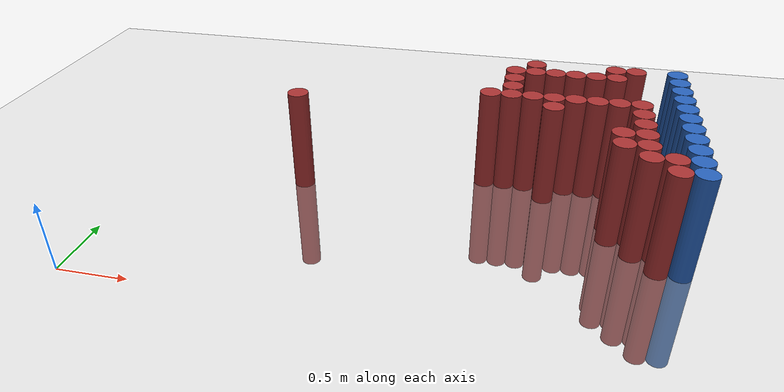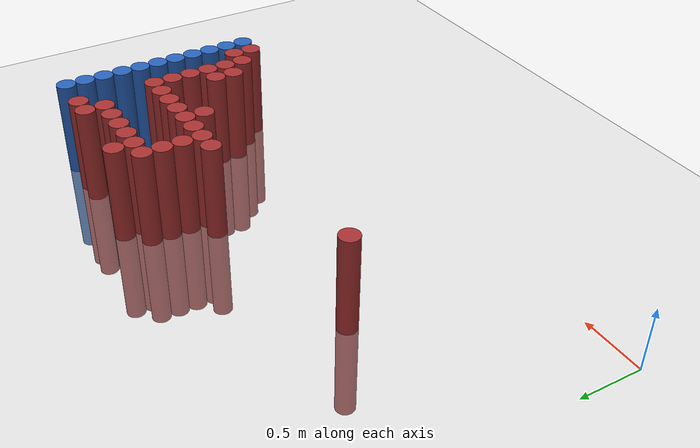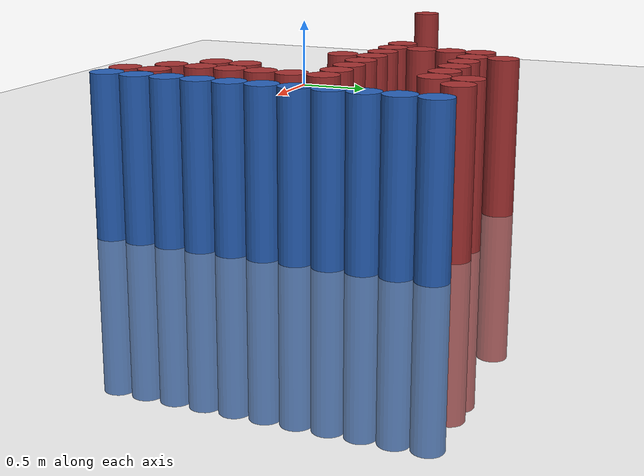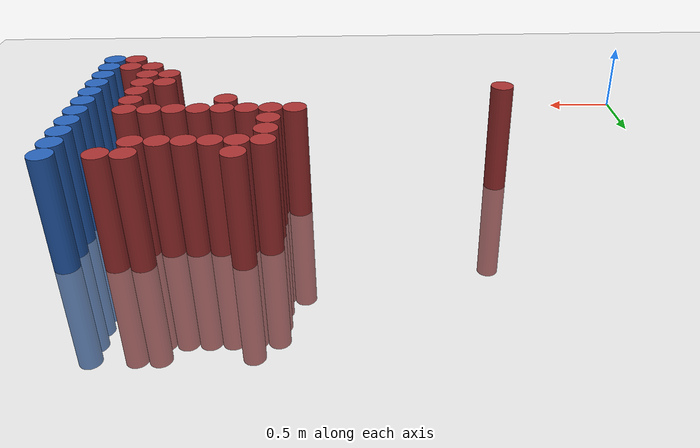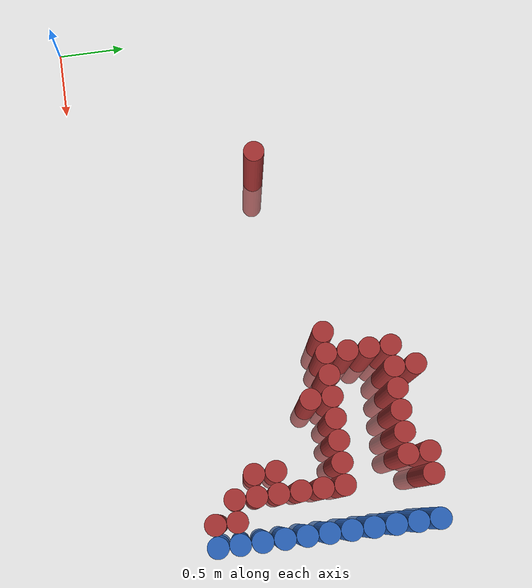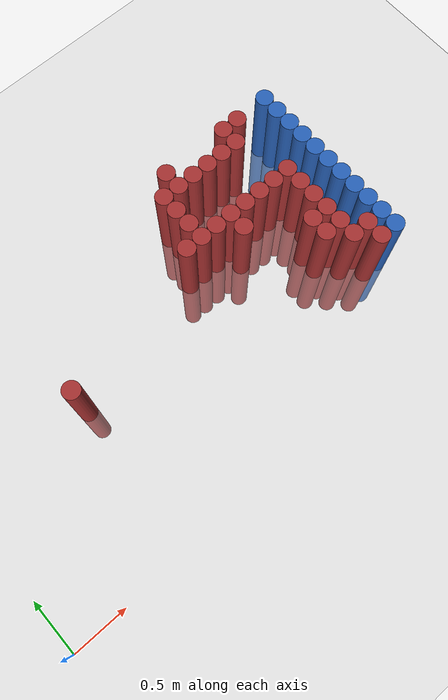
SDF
<sdf version="1.6">
 <world name="default">
  <model name="ground_plane">
   <static>1</static>
   <link name="link">
    <collision name="collision">
     <geometry><plane><normal>0 0 1</normal><size>100 100</size></plane></geometry>
     <surface><friction><ode><mu>100</mu><mu2>50</mu2></ode></friction></surface>
    </collision>
    <visual name="visual">
     <cast_shadows>0</cast_shadows>
     <geometry><plane><normal>0 0 1</normal><size>100 100</size></plane></geometry>
     <material>
      <script><uri>file://media/materials/scripts/gazebo.material</uri><name>Gazebo/Grey</name></script>
     </material>
    </visual>
   </link>
  </model>
  <model name="unit_cylinder_126">
   <static>1</static>
   <pose>3.925000 0.925000 0.000000 0.000000 0.000000 0.000000</pose>
   <link name="link">
    <inertial>
     <mass>1</mass>
     <inertia><ixx>0.145833</ixx><ixy>0</ixy><ixz>0</ixz><iyy>0.145833</iyy><iyz>0</iyz><izz>0.125</izz></inertia>
    </inertial>
    <collision name="collision">
     <geometry><cylinder><radius>0.075000</radius><length>1.5</length></cylinder></geometry>
    </collision>
    <visual name="visual">
     <geometry><cylinder><radius>0.075000</radius><length>1.5</length></cylinder></geometry>
     <material>
      <ambient>0.152000 0.379000 0.720000 1</ambient>
      <diffuse>0.152000 0.379000 0.720000 1</diffuse>
     </material>
     <material>
      <script><name>Gazebo/Grey</name><uri>file://media/materials/scripts/gazebo.material</uri></script>
     </material>
    </visual>
   </link>
  </model>
  <model name="unit_cylinder_128">
   <static>1</static>
   <pose>3.925000 1.075000 0.000000 0.000000 0.000000 0.000000</pose>
   <link name="link">
    <inertial>
     <mass>1</mass>
     <inertia><ixx>0.145833</ixx><ixy>0</ixy><ixz>0</ixz><iyy>0.145833</iyy><iyz>0</iyz><izz>0.125</izz></inertia>
    </inertial>
    <collision name="collision">
     <geometry><cylinder><radius>0.075000</radius><length>1.5</length></cylinder></geometry>
    </collision>
    <visual name="visual">
     <geometry><cylinder><radius>0.075000</radius><length>1.5</length></cylinder></geometry>
     <material>
      <ambient>0.152000 0.379000 0.720000 1</ambient>
      <diffuse>0.152000 0.379000 0.720000 1</diffuse>
     </material>
     <material>
      <script><name>Gazebo/Grey</name><uri>file://media/materials/scripts/gazebo.material</uri></script>
     </material>
    </visual>
   </link>
  </model>
  <model name="unit_cylinder_130">
   <static>1</static>
   <pose>3.925000 1.225000 0.000000 0.000000 0.000000 0.000000</pose>
   <link name="link">
    <inertial>
     <mass>1</mass>
     <inertia><ixx>0.145833</ixx><ixy>0</ixy><ixz>0</ixz><iyy>0.145833</iyy><iyz>0</iyz><izz>0.125</izz></inertia>
    </inertial>
    <collision name="collision">
     <geometry><cylinder><radius>0.075000</radius><length>1.5</length></cylinder></geometry>
    </collision>
    <visual name="visual">
     <geometry><cylinder><radius>0.075000</radius><length>1.5</length></cylinder></geometry>
     <material>
      <ambient>0.152000 0.379000 0.720000 1</ambient>
      <diffuse>0.152000 0.379000 0.720000 1</diffuse>
     </material>
     <material>
      <script><name>Gazebo/Grey</name><uri>file://media/materials/scripts/gazebo.material</uri></script>
     </material>
    </visual>
   </link>
  </model>
  <model name="unit_cylinder_132">
   <static>1</static>
   <pose>3.925000 1.375000 0.000000 0.000000 0.000000 0.000000</pose>
   <link name="link">
    <inertial>
     <mass>1</mass>
     <inertia><ixx>0.145833</ixx><ixy>0</ixy><ixz>0</ixz><iyy>0.145833</iyy><iyz>0</iyz><izz>0.125</izz></inertia>
    </inertial>
    <collision name="collision">
     <geometry><cylinder><radius>0.075000</radius><length>1.5</length></cylinder></geometry>
    </collision>
    <visual name="visual">
     <geometry><cylinder><radius>0.075000</radius><length>1.5</length></cylinder></geometry>
     <material>
      <ambient>0.152000 0.379000 0.720000 1</ambient>
      <diffuse>0.152000 0.379000 0.720000 1</diffuse>
     </material>
     <material>
      <script><name>Gazebo/Grey</name><uri>file://media/materials/scripts/gazebo.material</uri></script>
     </material>
    </visual>
   </link>
  </model>
  <model name="unit_cylinder_134">
   <static>1</static>
   <pose>3.925000 1.525000 0.000000 0.000000 0.000000 0.000000</pose>
   <link name="link">
    <inertial>
     <mass>1</mass>
     <inertia><ixx>0.145833</ixx><ixy>0</ixy><ixz>0</ixz><iyy>0.145833</iyy><iyz>0</iyz><izz>0.125</izz></inertia>
    </inertial>
    <collision name="collision">
     <geometry><cylinder><radius>0.075000</radius><length>1.5</length></cylinder></geometry>
    </collision>
    <visual name="visual">
     <geometry><cylinder><radius>0.075000</radius><length>1.5</length></cylinder></geometry>
     <material>
      <ambient>0.152000 0.379000 0.720000 1</ambient>
      <diffuse>0.152000 0.379000 0.720000 1</diffuse>
     </material>
     <material>
      <script><name>Gazebo/Grey</name><uri>file://media/materials/scripts/gazebo.material</uri></script>
     </material>
    </visual>
   </link>
  </model>
  <model name="unit_cylinder_136">
   <static>1</static>
   <pose>3.925000 1.675000 0.000000 0.000000 0.000000 0.000000</pose>
   <link name="link">
    <inertial>
     <mass>1</mass>
     <inertia><ixx>0.145833</ixx><ixy>0</ixy><ixz>0</ixz><iyy>0.145833</iyy><iyz>0</iyz><izz>0.125</izz></inertia>
    </inertial>
    <collision name="collision">
     <geometry><cylinder><radius>0.075000</radius><length>1.5</length></cylinder></geometry>
    </collision>
    <visual name="visual">
     <geometry><cylinder><radius>0.075000</radius><length>1.5</length></cylinder></geometry>
     <material>
      <ambient>0.152000 0.379000 0.720000 1</ambient>
      <diffuse>0.152000 0.379000 0.720000 1</diffuse>
     </material>
     <material>
      <script><name>Gazebo/Grey</name><uri>file://media/materials/scripts/gazebo.material</uri></script>
     </material>
    </visual>
   </link>
  </model>
  <model name="unit_cylinder_138">
   <static>1</static>
   <pose>3.925000 1.825000 0.000000 0.000000 0.000000 0.000000</pose>
   <link name="link">
    <inertial>
     <mass>1</mass>
     <inertia><ixx>0.145833</ixx><ixy>0</ixy><ixz>0</ixz><iyy>0.145833</iyy><iyz>0</iyz><izz>0.125</izz></inertia>
    </inertial>
    <collision name="collision">
     <geometry><cylinder><radius>0.075000</radius><length>1.5</length></cylinder></geometry>
    </collision>
    <visual name="visual">
     <geometry><cylinder><radius>0.075000</radius><length>1.5</length></cylinder></geometry>
     <material>
      <ambient>0.152000 0.379000 0.720000 1</ambient>
      <diffuse>0.152000 0.379000 0.720000 1</diffuse>
     </material>
     <material>
      <script><name>Gazebo/Grey</name><uri>file://media/materials/scripts/gazebo.material</uri></script>
     </material>
    </visual>
   </link>
  </model>
  <model name="unit_cylinder_140">
   <static>1</static>
   <pose>3.925000 1.975000 0.000000 0.000000 0.000000 0.000000</pose>
   <link name="link">
    <inertial>
     <mass>1</mass>
     <inertia><ixx>0.145833</ixx><ixy>0</ixy><ixz>0</ixz><iyy>0.145833</iyy><iyz>0</iyz><izz>0.125</izz></inertia>
    </inertial>
    <collision name="collision">
     <geometry><cylinder><radius>0.075000</radius><length>1.5</length></cylinder></geometry>
    </collision>
    <visual name="visual">
     <geometry><cylinder><radius>0.075000</radius><length>1.5</length></cylinder></geometry>
     <material>
      <ambient>0.152000 0.379000 0.720000 1</ambient>
      <diffuse>0.152000 0.379000 0.720000 1</diffuse>
     </material>
     <material>
      <script><name>Gazebo/Grey</name><uri>file://media/materials/scripts/gazebo.material</uri></script>
     </material>
    </visual>
   </link>
  </model>
  <model name="unit_cylinder_142">
   <static>1</static>
   <pose>3.925000 2.125000 0.000000 0.000000 0.000000 0.000000</pose>
   <link name="link">
    <inertial>
     <mass>1</mass>
     <inertia><ixx>0.145833</ixx><ixy>0</ixy><ixz>0</ixz><iyy>0.145833</iyy><iyz>0</iyz><izz>0.125</izz></inertia>
    </inertial>
    <collision name="collision">
     <geometry><cylinder><radius>0.075000</radius><length>1.5</length></cylinder></geometry>
    </collision>
    <visual name="visual">
     <geometry><cylinder><radius>0.075000</radius><length>1.5</length></cylinder></geometry>
     <material>
      <ambient>0.152000 0.379000 0.720000 1</ambient>
      <diffuse>0.152000 0.379000 0.720000 1</diffuse>
     </material>
     <material>
      <script><name>Gazebo/Grey</name><uri>file://media/materials/scripts/gazebo.material</uri></script>
     </material>
    </visual>
   </link>
  </model>
  <model name="unit_cylinder_144">
   <static>1</static>
   <pose>3.925000 2.275000 0.000000 0.000000 0.000000 0.000000</pose>
   <link name="link">
    <inertial>
     <mass>1</mass>
     <inertia><ixx>0.145833</ixx><ixy>0</ixy><ixz>0</ixz><iyy>0.145833</iyy><iyz>0</iyz><izz>0.125</izz></inertia>
    </inertial>
    <collision name="collision">
     <geometry><cylinder><radius>0.075000</radius><length>1.5</length></cylinder></geometry>
    </collision>
    <visual name="visual">
     <geometry><cylinder><radius>0.075000</radius><length>1.5</length></cylinder></geometry>
     <material>
      <ambient>0.152000 0.379000 0.720000 1</ambient>
      <diffuse>0.152000 0.379000 0.720000 1</diffuse>
     </material>
     <material>
      <script><name>Gazebo/Grey</name><uri>file://media/materials/scripts/gazebo.material</uri></script>
     </material>
    </visual>
   </link>
  </model>
  <model name="unit_cylinder_404">
   <static>1</static>
   <pose>1.225000 1.375000 0.000000 0.000000 0.000000 0.000000</pose>
   <link name="link">
    <inertial>
     <mass>1</mass>
     <inertia><ixx>0.145833</ixx><ixy>0</ixy><ixz>0</ixz><iyy>0.145833</iyy><iyz>0</iyz><izz>0.125</izz></inertia>
    </inertial>
    <collision name="collision">
     <geometry><cylinder><radius>0.075000</radius><length>1.5</length></cylinder></geometry>
    </collision>
    <visual name="visual">
     <geometry><cylinder><radius>0.075000</radius><length>1.5</length></cylinder></geometry>
     <material>
      <ambient>0.648000 0.192000 0.192000 1</ambient>
      <diffuse>0.648000 0.192000 0.192000 1</diffuse>
     </material>
     <material>
      <script><name>Gazebo/Grey</name><uri>file://media/materials/scripts/gazebo.material</uri></script>
     </material>
    </visual>
   </link>
  </model>
  <model name="unit_cylinder_421">
   <static>1</static>
   <pose>2.575000 1.675000 0.000000 0.000000 0.000000 0.000000</pose>
   <link name="link">
    <inertial>
     <mass>1</mass>
     <inertia><ixx>0.145833</ixx><ixy>0</ixy><ixz>0</ixz><iyy>0.145833</iyy><iyz>0</iyz><izz>0.125</izz></inertia>
    </inertial>
    <collision name="collision">
     <geometry><cylinder><radius>0.075000</radius><length>1.5</length></cylinder></geometry>
    </collision>
    <visual name="visual">
     <geometry><cylinder><radius>0.075000</radius><length>1.5</length></cylinder></geometry>
     <material>
      <ambient>0.648000 0.192000 0.192000 1</ambient>
      <diffuse>0.648000 0.192000 0.192000 1</diffuse>
     </material>
     <material>
      <script><name>Gazebo/Grey</name><uri>file://media/materials/scripts/gazebo.material</uri></script>
     </material>
    </visual>
   </link>
  </model>
  <model name="unit_cylinder_425">
   <static>1</static>
   <pose>2.725000 1.675000 0.000000 0.000000 0.000000 0.000000</pose>
   <link name="link">
    <inertial>
     <mass>1</mass>
     <inertia><ixx>0.145833</ixx><ixy>0</ixy><ixz>0</ixz><iyy>0.145833</iyy><iyz>0</iyz><izz>0.125</izz></inertia>
    </inertial>
    <collision name="collision">
     <geometry><cylinder><radius>0.075000</radius><length>1.5</length></cylinder></geometry>
    </collision>
    <visual name="visual">
     <geometry><cylinder><radius>0.075000</radius><length>1.5</length></cylinder></geometry>
     <material>
      <ambient>0.648000 0.192000 0.192000 1</ambient>
      <diffuse>0.648000 0.192000 0.192000 1</diffuse>
     </material>
     <material>
      <script><name>Gazebo/Grey</name><uri>file://media/materials/scripts/gazebo.material</uri></script>
     </material>
    </visual>
   </link>
  </model>
  <model name="unit_cylinder_426">
   <static>1</static>
   <pose>2.725000 1.825000 0.000000 0.000000 0.000000 0.000000</pose>
   <link name="link">
    <inertial>
     <mass>1</mass>
     <inertia><ixx>0.145833</ixx><ixy>0</ixy><ixz>0</ixz><iyy>0.145833</iyy><iyz>0</iyz><izz>0.125</izz></inertia>
    </inertial>
    <collision name="collision">
     <geometry><cylinder><radius>0.075000</radius><length>1.5</length></cylinder></geometry>
    </collision>
    <visual name="visual">
     <geometry><cylinder><radius>0.075000</radius><length>1.5</length></cylinder></geometry>
     <material>
      <ambient>0.648000 0.192000 0.192000 1</ambient>
      <diffuse>0.648000 0.192000 0.192000 1</diffuse>
     </material>
     <material>
      <script><name>Gazebo/Grey</name><uri>file://media/materials/scripts/gazebo.material</uri></script>
     </material>
    </visual>
   </link>
  </model>
  <model name="unit_cylinder_427">
   <static>1</static>
   <pose>2.725000 1.975000 0.000000 0.000000 0.000000 0.000000</pose>
   <link name="link">
    <inertial>
     <mass>1</mass>
     <inertia><ixx>0.145833</ixx><ixy>0</ixy><ixz>0</ixz><iyy>0.145833</iyy><iyz>0</iyz><izz>0.125</izz></inertia>
    </inertial>
    <collision name="collision">
     <geometry><cylinder><radius>0.075000</radius><length>1.5</length></cylinder></geometry>
    </collision>
    <visual name="visual">
     <geometry><cylinder><radius>0.075000</radius><length>1.5</length></cylinder></geometry>
     <material>
      <ambient>0.648000 0.192000 0.192000 1</ambient>
      <diffuse>0.648000 0.192000 0.192000 1</diffuse>
     </material>
     <material>
      <script><name>Gazebo/Grey</name><uri>file://media/materials/scripts/gazebo.material</uri></script>
     </material>
    </visual>
   </link>
  </model>
  <model name="unit_cylinder_428">
   <static>1</static>
   <pose>2.725000 2.125000 0.000000 0.000000 0.000000 0.000000</pose>
   <link name="link">
    <inertial>
     <mass>1</mass>
     <inertia><ixx>0.145833</ixx><ixy>0</ixy><ixz>0</ixz><iyy>0.145833</iyy><iyz>0</iyz><izz>0.125</izz></inertia>
    </inertial>
    <collision name="collision">
     <geometry><cylinder><radius>0.075000</radius><length>1.5</length></cylinder></geometry>
    </collision>
    <visual name="visual">
     <geometry><cylinder><radius>0.075000</radius><length>1.5</length></cylinder></geometry>
     <material>
      <ambient>0.648000 0.192000 0.192000 1</ambient>
      <diffuse>0.648000 0.192000 0.192000 1</diffuse>
     </material>
     <material>
      <script><name>Gazebo/Grey</name><uri>file://media/materials/scripts/gazebo.material</uri></script>
     </material>
    </visual>
   </link>
  </model>
  <model name="unit_cylinder_432">
   <static>1</static>
   <pose>2.875000 1.675000 0.000000 0.000000 0.000000 0.000000</pose>
   <link name="link">
    <inertial>
     <mass>1</mass>
     <inertia><ixx>0.145833</ixx><ixy>0</ixy><ixz>0</ixz><iyy>0.145833</iyy><iyz>0</iyz><izz>0.125</izz></inertia>
    </inertial>
    <collision name="collision">
     <geometry><cylinder><radius>0.075000</radius><length>1.5</length></cylinder></geometry>
    </collision>
    <visual name="visual">
     <geometry><cylinder><radius>0.075000</radius><length>1.5</length></cylinder></geometry>
     <material>
      <ambient>0.648000 0.192000 0.192000 1</ambient>
      <diffuse>0.648000 0.192000 0.192000 1</diffuse>
     </material>
     <material>
      <script><name>Gazebo/Grey</name><uri>file://media/materials/scripts/gazebo.material</uri></script>
     </material>
    </visual>
   </link>
  </model>
  <model name="unit_cylinder_433">
   <static>1</static>
   <pose>2.875000 2.125000 0.000000 0.000000 0.000000 0.000000</pose>
   <link name="link">
    <inertial>
     <mass>1</mass>
     <inertia><ixx>0.145833</ixx><ixy>0</ixy><ixz>0</ixz><iyy>0.145833</iyy><iyz>0</iyz><izz>0.125</izz></inertia>
    </inertial>
    <collision name="collision">
     <geometry><cylinder><radius>0.075000</radius><length>1.5</length></cylinder></geometry>
    </collision>
    <visual name="visual">
     <geometry><cylinder><radius>0.075000</radius><length>1.5</length></cylinder></geometry>
     <material>
      <ambient>0.648000 0.192000 0.192000 1</ambient>
      <diffuse>0.648000 0.192000 0.192000 1</diffuse>
     </material>
     <material>
      <script><name>Gazebo/Grey</name><uri>file://media/materials/scripts/gazebo.material</uri></script>
     </material>
    </visual>
   </link>
  </model>
  <model name="unit_cylinder_434">
   <static>1</static>
   <pose>2.875000 2.275000 0.000000 0.000000 0.000000 0.000000</pose>
   <link name="link">
    <inertial>
     <mass>1</mass>
     <inertia><ixx>0.145833</ixx><ixy>0</ixy><ixz>0</ixz><iyy>0.145833</iyy><iyz>0</iyz><izz>0.125</izz></inertia>
    </inertial>
    <collision name="collision">
     <geometry><cylinder><radius>0.075000</radius><length>1.5</length></cylinder></geometry>
    </collision>
    <visual name="visual">
     <geometry><cylinder><radius>0.075000</radius><length>1.5</length></cylinder></geometry>
     <material>
      <ambient>0.648000 0.192000 0.192000 1</ambient>
      <diffuse>0.648000 0.192000 0.192000 1</diffuse>
     </material>
     <material>
      <script><name>Gazebo/Grey</name><uri>file://media/materials/scripts/gazebo.material</uri></script>
     </material>
    </visual>
   </link>
  </model>
  <model name="unit_cylinder_437">
   <static>1</static>
   <pose>3.025000 1.525000 0.000000 0.000000 0.000000 0.000000</pose>
   <link name="link">
    <inertial>
     <mass>1</mass>
     <inertia><ixx>0.145833</ixx><ixy>0</ixy><ixz>0</ixz><iyy>0.145833</iyy><iyz>0</iyz><izz>0.125</izz></inertia>
    </inertial>
    <collision name="collision">
     <geometry><cylinder><radius>0.075000</radius><length>1.5</length></cylinder></geometry>
    </collision>
    <visual name="visual">
     <geometry><cylinder><radius>0.075000</radius><length>1.5</length></cylinder></geometry>
     <material>
      <ambient>0.648000 0.192000 0.192000 1</ambient>
      <diffuse>0.648000 0.192000 0.192000 1</diffuse>
     </material>
     <material>
      <script><name>Gazebo/Grey</name><uri>file://media/materials/scripts/gazebo.material</uri></script>
     </material>
    </visual>
   </link>
  </model>
  <model name="unit_cylinder_438">
   <static>1</static>
   <pose>3.025000 1.675000 0.000000 0.000000 0.000000 0.000000</pose>
   <link name="link">
    <inertial>
     <mass>1</mass>
     <inertia><ixx>0.145833</ixx><ixy>0</ixy><ixz>0</ixz><iyy>0.145833</iyy><iyz>0</iyz><izz>0.125</izz></inertia>
    </inertial>
    <collision name="collision">
     <geometry><cylinder><radius>0.075000</radius><length>1.5</length></cylinder></geometry>
    </collision>
    <visual name="visual">
     <geometry><cylinder><radius>0.075000</radius><length>1.5</length></cylinder></geometry>
     <material>
      <ambient>0.648000 0.192000 0.192000 1</ambient>
      <diffuse>0.648000 0.192000 0.192000 1</diffuse>
     </material>
     <material>
      <script><name>Gazebo/Grey</name><uri>file://media/materials/scripts/gazebo.material</uri></script>
     </material>
    </visual>
   </link>
  </model>
  <model name="unit_cylinder_439">
   <static>1</static>
   <pose>3.025000 2.125000 0.000000 0.000000 0.000000 0.000000</pose>
   <link name="link">
    <inertial>
     <mass>1</mass>
     <inertia><ixx>0.145833</ixx><ixy>0</ixy><ixz>0</ixz><iyy>0.145833</iyy><iyz>0</iyz><izz>0.125</izz></inertia>
    </inertial>
    <collision name="collision">
     <geometry><cylinder><radius>0.075000</radius><length>1.5</length></cylinder></geometry>
    </collision>
    <visual name="visual">
     <geometry><cylinder><radius>0.075000</radius><length>1.5</length></cylinder></geometry>
     <material>
      <ambient>0.648000 0.192000 0.192000 1</ambient>
      <diffuse>0.648000 0.192000 0.192000 1</diffuse>
     </material>
     <material>
      <script><name>Gazebo/Grey</name><uri>file://media/materials/scripts/gazebo.material</uri></script>
     </material>
    </visual>
   </link>
  </model>
  <model name="unit_cylinder_444">
   <static>1</static>
   <pose>3.175000 1.675000 0.000000 0.000000 0.000000 0.000000</pose>
   <link name="link">
    <inertial>
     <mass>1</mass>
     <inertia><ixx>0.145833</ixx><ixy>0</ixy><ixz>0</ixz><iyy>0.145833</iyy><iyz>0</iyz><izz>0.125</izz></inertia>
    </inertial>
    <collision name="collision">
     <geometry><cylinder><radius>0.075000</radius><length>1.5</length></cylinder></geometry>
    </collision>
    <visual name="visual">
     <geometry><cylinder><radius>0.075000</radius><length>1.5</length></cylinder></geometry>
     <material>
      <ambient>0.648000 0.192000 0.192000 1</ambient>
      <diffuse>0.648000 0.192000 0.192000 1</diffuse>
     </material>
     <material>
      <script><name>Gazebo/Grey</name><uri>file://media/materials/scripts/gazebo.material</uri></script>
     </material>
    </visual>
   </link>
  </model>
  <model name="unit_cylinder_445">
   <static>1</static>
   <pose>3.175000 2.125000 0.000000 0.000000 0.000000 0.000000</pose>
   <link name="link">
    <inertial>
     <mass>1</mass>
     <inertia><ixx>0.145833</ixx><ixy>0</ixy><ixz>0</ixz><iyy>0.145833</iyy><iyz>0</iyz><izz>0.125</izz></inertia>
    </inertial>
    <collision name="collision">
     <geometry><cylinder><radius>0.075000</radius><length>1.5</length></cylinder></geometry>
    </collision>
    <visual name="visual">
     <geometry><cylinder><radius>0.075000</radius><length>1.5</length></cylinder></geometry>
     <material>
      <ambient>0.648000 0.192000 0.192000 1</ambient>
      <diffuse>0.648000 0.192000 0.192000 1</diffuse>
     </material>
     <material>
      <script><name>Gazebo/Grey</name><uri>file://media/materials/scripts/gazebo.material</uri></script>
     </material>
    </visual>
   </link>
  </model>
  <model name="unit_cylinder_452">
   <static>1</static>
   <pose>3.325000 1.675000 0.000000 0.000000 0.000000 0.000000</pose>
   <link name="link">
    <inertial>
     <mass>1</mass>
     <inertia><ixx>0.145833</ixx><ixy>0</ixy><ixz>0</ixz><iyy>0.145833</iyy><iyz>0</iyz><izz>0.125</izz></inertia>
    </inertial>
    <collision name="collision">
     <geometry><cylinder><radius>0.075000</radius><length>1.5</length></cylinder></geometry>
    </collision>
    <visual name="visual">
     <geometry><cylinder><radius>0.075000</radius><length>1.5</length></cylinder></geometry>
     <material>
      <ambient>0.648000 0.192000 0.192000 1</ambient>
      <diffuse>0.648000 0.192000 0.192000 1</diffuse>
     </material>
     <material>
      <script><name>Gazebo/Grey</name><uri>file://media/materials/scripts/gazebo.material</uri></script>
     </material>
    </visual>
   </link>
  </model>
  <model name="unit_cylinder_453">
   <static>1</static>
   <pose>3.325000 2.125000 0.000000 0.000000 0.000000 0.000000</pose>
   <link name="link">
    <inertial>
     <mass>1</mass>
     <inertia><ixx>0.145833</ixx><ixy>0</ixy><ixz>0</ixz><iyy>0.145833</iyy><iyz>0</iyz><izz>0.125</izz></inertia>
    </inertial>
    <collision name="collision">
     <geometry><cylinder><radius>0.075000</radius><length>1.5</length></cylinder></geometry>
    </collision>
    <visual name="visual">
     <geometry><cylinder><radius>0.075000</radius><length>1.5</length></cylinder></geometry>
     <material>
      <ambient>0.648000 0.192000 0.192000 1</ambient>
      <diffuse>0.648000 0.192000 0.192000 1</diffuse>
     </material>
     <material>
      <script><name>Gazebo/Grey</name><uri>file://media/materials/scripts/gazebo.material</uri></script>
     </material>
    </visual>
   </link>
  </model>
  <model name="unit_cylinder_459">
   <static>1</static>
   <pose>3.475000 1.075000 0.000000 0.000000 0.000000 0.000000</pose>
   <link name="link">
    <inertial>
     <mass>1</mass>
     <inertia><ixx>0.145833</ixx><ixy>0</ixy><ixz>0</ixz><iyy>0.145833</iyy><iyz>0</iyz><izz>0.125</izz></inertia>
    </inertial>
    <collision name="collision">
     <geometry><cylinder><radius>0.075000</radius><length>1.5</length></cylinder></geometry>
    </collision>
    <visual name="visual">
     <geometry><cylinder><radius>0.075000</radius><length>1.5</length></cylinder></geometry>
     <material>
      <ambient>0.648000 0.192000 0.192000 1</ambient>
      <diffuse>0.648000 0.192000 0.192000 1</diffuse>
     </material>
     <material>
      <script><name>Gazebo/Grey</name><uri>file://media/materials/scripts/gazebo.material</uri></script>
     </material>
    </visual>
   </link>
  </model>
  <model name="unit_cylinder_460">
   <static>1</static>
   <pose>3.475000 1.225000 0.000000 0.000000 0.000000 0.000000</pose>
   <link name="link">
    <inertial>
     <mass>1</mass>
     <inertia><ixx>0.145833</ixx><ixy>0</ixy><ixz>0</ixz><iyy>0.145833</iyy><iyz>0</iyz><izz>0.125</izz></inertia>
    </inertial>
    <collision name="collision">
     <geometry><cylinder><radius>0.075000</radius><length>1.5</length></cylinder></geometry>
    </collision>
    <visual name="visual">
     <geometry><cylinder><radius>0.075000</radius><length>1.5</length></cylinder></geometry>
     <material>
      <ambient>0.648000 0.192000 0.192000 1</ambient>
      <diffuse>0.648000 0.192000 0.192000 1</diffuse>
     </material>
     <material>
      <script><name>Gazebo/Grey</name><uri>file://media/materials/scripts/gazebo.material</uri></script>
     </material>
    </visual>
   </link>
  </model>
  <model name="unit_cylinder_461">
   <static>1</static>
   <pose>3.475000 1.675000 0.000000 0.000000 0.000000 0.000000</pose>
   <link name="link">
    <inertial>
     <mass>1</mass>
     <inertia><ixx>0.145833</ixx><ixy>0</ixy><ixz>0</ixz><iyy>0.145833</iyy><iyz>0</iyz><izz>0.125</izz></inertia>
    </inertial>
    <collision name="collision">
     <geometry><cylinder><radius>0.075000</radius><length>1.5</length></cylinder></geometry>
    </collision>
    <visual name="visual">
     <geometry><cylinder><radius>0.075000</radius><length>1.5</length></cylinder></geometry>
     <material>
      <ambient>0.648000 0.192000 0.192000 1</ambient>
      <diffuse>0.648000 0.192000 0.192000 1</diffuse>
     </material>
     <material>
      <script><name>Gazebo/Grey</name><uri>file://media/materials/scripts/gazebo.material</uri></script>
     </material>
    </visual>
   </link>
  </model>
  <model name="unit_cylinder_462">
   <static>1</static>
   <pose>3.475000 2.125000 0.000000 0.000000 0.000000 0.000000</pose>
   <link name="link">
    <inertial>
     <mass>1</mass>
     <inertia><ixx>0.145833</ixx><ixy>0</ixy><ixz>0</ixz><iyy>0.145833</iyy><iyz>0</iyz><izz>0.125</izz></inertia>
    </inertial>
    <collision name="collision">
     <geometry><cylinder><radius>0.075000</radius><length>1.5</length></cylinder></geometry>
    </collision>
    <visual name="visual">
     <geometry><cylinder><radius>0.075000</radius><length>1.5</length></cylinder></geometry>
     <material>
      <ambient>0.648000 0.192000 0.192000 1</ambient>
      <diffuse>0.648000 0.192000 0.192000 1</diffuse>
     </material>
     <material>
      <script><name>Gazebo/Grey</name><uri>file://media/materials/scripts/gazebo.material</uri></script>
     </material>
    </visual>
   </link>
  </model>
  <model name="unit_cylinder_463">
   <static>1</static>
   <pose>3.475000 2.275000 0.000000 0.000000 0.000000 0.000000</pose>
   <link name="link">
    <inertial>
     <mass>1</mass>
     <inertia><ixx>0.145833</ixx><ixy>0</ixy><ixz>0</ixz><iyy>0.145833</iyy><iyz>0</iyz><izz>0.125</izz></inertia>
    </inertial>
    <collision name="collision">
     <geometry><cylinder><radius>0.075000</radius><length>1.5</length></cylinder></geometry>
    </collision>
    <visual name="visual">
     <geometry><cylinder><radius>0.075000</radius><length>1.5</length></cylinder></geometry>
     <material>
      <ambient>0.648000 0.192000 0.192000 1</ambient>
      <diffuse>0.648000 0.192000 0.192000 1</diffuse>
     </material>
     <material>
      <script><name>Gazebo/Grey</name><uri>file://media/materials/scripts/gazebo.material</uri></script>
     </material>
    </visual>
   </link>
  </model>
  <model name="unit_cylinder_468">
   <static>1</static>
   <pose>3.625000 0.925000 0.000000 0.000000 0.000000 0.000000</pose>
   <link name="link">
    <inertial>
     <mass>1</mass>
     <inertia><ixx>0.145833</ixx><ixy>0</ixy><ixz>0</ixz><iyy>0.145833</iyy><iyz>0</iyz><izz>0.125</izz></inertia>
    </inertial>
    <collision name="collision">
     <geometry><cylinder><radius>0.075000</radius><length>1.5</length></cylinder></geometry>
    </collision>
    <visual name="visual">
     <geometry><cylinder><radius>0.075000</radius><length>1.5</length></cylinder></geometry>
     <material>
      <ambient>0.648000 0.192000 0.192000 1</ambient>
      <diffuse>0.648000 0.192000 0.192000 1</diffuse>
     </material>
     <material>
      <script><name>Gazebo/Grey</name><uri>file://media/materials/scripts/gazebo.material</uri></script>
     </material>
    </visual>
   </link>
  </model>
  <model name="unit_cylinder_469">
   <static>1</static>
   <pose>3.625000 1.075000 0.000000 0.000000 0.000000 0.000000</pose>
   <link name="link">
    <inertial>
     <mass>1</mass>
     <inertia><ixx>0.145833</ixx><ixy>0</ixy><ixz>0</ixz><iyy>0.145833</iyy><iyz>0</iyz><izz>0.125</izz></inertia>
    </inertial>
    <collision name="collision">
     <geometry><cylinder><radius>0.075000</radius><length>1.5</length></cylinder></geometry>
    </collision>
    <visual name="visual">
     <geometry><cylinder><radius>0.075000</radius><length>1.5</length></cylinder></geometry>
     <material>
      <ambient>0.648000 0.192000 0.192000 1</ambient>
      <diffuse>0.648000 0.192000 0.192000 1</diffuse>
     </material>
     <material>
      <script><name>Gazebo/Grey</name><uri>file://media/materials/scripts/gazebo.material</uri></script>
     </material>
    </visual>
   </link>
  </model>
  <model name="unit_cylinder_470">
   <static>1</static>
   <pose>3.625000 1.225000 0.000000 0.000000 0.000000 0.000000</pose>
   <link name="link">
    <inertial>
     <mass>1</mass>
     <inertia><ixx>0.145833</ixx><ixy>0</ixy><ixz>0</ixz><iyy>0.145833</iyy><iyz>0</iyz><izz>0.125</izz></inertia>
    </inertial>
    <collision name="collision">
     <geometry><cylinder><radius>0.075000</radius><length>1.5</length></cylinder></geometry>
    </collision>
    <visual name="visual">
     <geometry><cylinder><radius>0.075000</radius><length>1.5</length></cylinder></geometry>
     <material>
      <ambient>0.648000 0.192000 0.192000 1</ambient>
      <diffuse>0.648000 0.192000 0.192000 1</diffuse>
     </material>
     <material>
      <script><name>Gazebo/Grey</name><uri>file://media/materials/scripts/gazebo.material</uri></script>
     </material>
    </visual>
   </link>
  </model>
  <model name="unit_cylinder_471">
   <static>1</static>
   <pose>3.625000 1.375000 0.000000 0.000000 0.000000 0.000000</pose>
   <link name="link">
    <inertial>
     <mass>1</mass>
     <inertia><ixx>0.145833</ixx><ixy>0</ixy><ixz>0</ixz><iyy>0.145833</iyy><iyz>0</iyz><izz>0.125</izz></inertia>
    </inertial>
    <collision name="collision">
     <geometry><cylinder><radius>0.075000</radius><length>1.5</length></cylinder></geometry>
    </collision>
    <visual name="visual">
     <geometry><cylinder><radius>0.075000</radius><length>1.5</length></cylinder></geometry>
     <material>
      <ambient>0.648000 0.192000 0.192000 1</ambient>
      <diffuse>0.648000 0.192000 0.192000 1</diffuse>
     </material>
     <material>
      <script><name>Gazebo/Grey</name><uri>file://media/materials/scripts/gazebo.material</uri></script>
     </material>
    </visual>
   </link>
  </model>
  <model name="unit_cylinder_472">
   <static>1</static>
   <pose>3.625000 1.525000 0.000000 0.000000 0.000000 0.000000</pose>
   <link name="link">
    <inertial>
     <mass>1</mass>
     <inertia><ixx>0.145833</ixx><ixy>0</ixy><ixz>0</ixz><iyy>0.145833</iyy><iyz>0</iyz><izz>0.125</izz></inertia>
    </inertial>
    <collision name="collision">
     <geometry><cylinder><radius>0.075000</radius><length>1.5</length></cylinder></geometry>
    </collision>
    <visual name="visual">
     <geometry><cylinder><radius>0.075000</radius><length>1.5</length></cylinder></geometry>
     <material>
      <ambient>0.648000 0.192000 0.192000 1</ambient>
      <diffuse>0.648000 0.192000 0.192000 1</diffuse>
     </material>
     <material>
      <script><name>Gazebo/Grey</name><uri>file://media/materials/scripts/gazebo.material</uri></script>
     </material>
    </visual>
   </link>
  </model>
  <model name="unit_cylinder_473">
   <static>1</static>
   <pose>3.625000 1.675000 0.000000 0.000000 0.000000 0.000000</pose>
   <link name="link">
    <inertial>
     <mass>1</mass>
     <inertia><ixx>0.145833</ixx><ixy>0</ixy><ixz>0</ixz><iyy>0.145833</iyy><iyz>0</iyz><izz>0.125</izz></inertia>
    </inertial>
    <collision name="collision">
     <geometry><cylinder><radius>0.075000</radius><length>1.5</length></cylinder></geometry>
    </collision>
    <visual name="visual">
     <geometry><cylinder><radius>0.075000</radius><length>1.5</length></cylinder></geometry>
     <material>
      <ambient>0.648000 0.192000 0.192000 1</ambient>
      <diffuse>0.648000 0.192000 0.192000 1</diffuse>
     </material>
     <material>
      <script><name>Gazebo/Grey</name><uri>file://media/materials/scripts/gazebo.material</uri></script>
     </material>
    </visual>
   </link>
  </model>
  <model name="unit_cylinder_474">
   <static>1</static>
   <pose>3.625000 2.275000 0.000000 0.000000 0.000000 0.000000</pose>
   <link name="link">
    <inertial>
     <mass>1</mass>
     <inertia><ixx>0.145833</ixx><ixy>0</ixy><ixz>0</ixz><iyy>0.145833</iyy><iyz>0</iyz><izz>0.125</izz></inertia>
    </inertial>
    <collision name="collision">
     <geometry><cylinder><radius>0.075000</radius><length>1.5</length></cylinder></geometry>
    </collision>
    <visual name="visual">
     <geometry><cylinder><radius>0.075000</radius><length>1.5</length></cylinder></geometry>
     <material>
      <ambient>0.648000 0.192000 0.192000 1</ambient>
      <diffuse>0.648000 0.192000 0.192000 1</diffuse>
     </material>
     <material>
      <script><name>Gazebo/Grey</name><uri>file://media/materials/scripts/gazebo.material</uri></script>
     </material>
    </visual>
   </link>
  </model>
  <model name="unit_cylinder_484">
   <static>1</static>
   <pose>3.775000 0.775000 0.000000 0.000000 0.000000 0.000000</pose>
   <link name="link">
    <inertial>
     <mass>1</mass>
     <inertia><ixx>0.145833</ixx><ixy>0</ixy><ixz>0</ixz><iyy>0.145833</iyy><iyz>0</iyz><izz>0.125</izz></inertia>
    </inertial>
    <collision name="collision">
     <geometry><cylinder><radius>0.075000</radius><length>1.5</length></cylinder></geometry>
    </collision>
    <visual name="visual">
     <geometry><cylinder><radius>0.075000</radius><length>1.5</length></cylinder></geometry>
     <material>
      <ambient>0.648000 0.192000 0.192000 1</ambient>
      <diffuse>0.648000 0.192000 0.192000 1</diffuse>
     </material>
     <material>
      <script><name>Gazebo/Grey</name><uri>file://media/materials/scripts/gazebo.material</uri></script>
     </material>
    </visual>
   </link>
  </model>
  <model name="unit_cylinder_485">
   <static>1</static>
   <pose>3.775000 0.925000 0.000000 0.000000 0.000000 0.000000</pose>
   <link name="link">
    <inertial>
     <mass>1</mass>
     <inertia><ixx>0.145833</ixx><ixy>0</ixy><ixz>0</ixz><iyy>0.145833</iyy><iyz>0</iyz><izz>0.125</izz></inertia>
    </inertial>
    <collision name="collision">
     <geometry><cylinder><radius>0.075000</radius><length>1.5</length></cylinder></geometry>
    </collision>
    <visual name="visual">
     <geometry><cylinder><radius>0.075000</radius><length>1.5</length></cylinder></geometry>
     <material>
      <ambient>0.648000 0.192000 0.192000 1</ambient>
      <diffuse>0.648000 0.192000 0.192000 1</diffuse>
     </material>
     <material>
      <script><name>Gazebo/Grey</name><uri>file://media/materials/scripts/gazebo.material</uri></script>
     </material>
    </visual>
   </link>
  </model>
  <model name="unit_cylinder_515">
   <static>1</static>
   <pose>3.925000 0.775000 0.000000 0.000000 0.000000 0.000000</pose>
   <link name="link">
    <inertial>
     <mass>1</mass>
     <inertia><ixx>0.145833</ixx><ixy>0</ixy><ixz>0</ixz><iyy>0.145833</iyy><iyz>0</iyz><izz>0.125</izz></inertia>
    </inertial>
    <collision name="collision">
     <geometry><cylinder><radius>0.075000</radius><length>1.5</length></cylinder></geometry>
    </collision>
    <visual name="visual">
     <geometry><cylinder><radius>0.075000</radius><length>1.5</length></cylinder></geometry>
     <material>
      <ambient>0.152000 0.379000 0.720000 1</ambient>
      <diffuse>0.152000 0.379000 0.720000 1</diffuse>
     </material>
     <material>
      <script><name>Gazebo/Grey</name><uri>file://media/materials/scripts/gazebo.material</uri></script>
     </material>
    </visual>
   </link>
  </model>
  <model name="unit_cylinder_516">
   <static>1</static>
   <pose>3.925000 0.925000 0.000000 0.000000 0.000000 0.000000</pose>
   <link name="link">
    <inertial>
     <mass>1</mass>
     <inertia><ixx>0.145833</ixx><ixy>0</ixy><ixz>0</ixz><iyy>0.145833</iyy><iyz>0</iyz><izz>0.125</izz></inertia>
    </inertial>
    <collision name="collision">
     <geometry><cylinder><radius>0.075000</radius><length>1.5</length></cylinder></geometry>
    </collision>
    <visual name="visual">
     <geometry><cylinder><radius>0.075000</radius><length>1.5</length></cylinder></geometry>
     <material>
      <ambient>0.152000 0.379000 0.720000 1</ambient>
      <diffuse>0.152000 0.379000 0.720000 1</diffuse>
     </material>
     <material>
      <script><name>Gazebo/Grey</name><uri>file://media/materials/scripts/gazebo.material</uri></script>
     </material>
    </visual>
   </link>
  </model>
  <model name="unit_cylinder_517">
   <static>1</static>
   <pose>3.925000 1.075000 0.000000 0.000000 0.000000 0.000000</pose>
   <link name="link">
    <inertial>
     <mass>1</mass>
     <inertia><ixx>0.145833</ixx><ixy>0</ixy><ixz>0</ixz><iyy>0.145833</iyy><iyz>0</iyz><izz>0.125</izz></inertia>
    </inertial>
    <collision name="collision">
     <geometry><cylinder><radius>0.075000</radius><length>1.5</length></cylinder></geometry>
    </collision>
    <visual name="visual">
     <geometry><cylinder><radius>0.075000</radius><length>1.5</length></cylinder></geometry>
     <material>
      <ambient>0.152000 0.379000 0.720000 1</ambient>
      <diffuse>0.152000 0.379000 0.720000 1</diffuse>
     </material>
     <material>
      <script><name>Gazebo/Grey</name><uri>file://media/materials/scripts/gazebo.material</uri></script>
     </material>
    </visual>
   </link>
  </model>
  <model name="unit_cylinder_518">
   <static>1</static>
   <pose>3.925000 1.225000 0.000000 0.000000 0.000000 0.000000</pose>
   <link name="link">
    <inertial>
     <mass>1</mass>
     <inertia><ixx>0.145833</ixx><ixy>0</ixy><ixz>0</ixz><iyy>0.145833</iyy><iyz>0</iyz><izz>0.125</izz></inertia>
    </inertial>
    <collision name="collision">
     <geometry><cylinder><radius>0.075000</radius><length>1.5</length></cylinder></geometry>
    </collision>
    <visual name="visual">
     <geometry><cylinder><radius>0.075000</radius><length>1.5</length></cylinder></geometry>
     <material>
      <ambient>0.152000 0.379000 0.720000 1</ambient>
      <diffuse>0.152000 0.379000 0.720000 1</diffuse>
     </material>
     <material>
      <script><name>Gazebo/Grey</name><uri>file://media/materials/scripts/gazebo.material</uri></script>
     </material>
    </visual>
   </link>
  </model>
  <model name="unit_cylinder_519">
   <static>1</static>
   <pose>3.925000 1.375000 0.000000 0.000000 0.000000 0.000000</pose>
   <link name="link">
    <inertial>
     <mass>1</mass>
     <inertia><ixx>0.145833</ixx><ixy>0</ixy><ixz>0</ixz><iyy>0.145833</iyy><iyz>0</iyz><izz>0.125</izz></inertia>
    </inertial>
    <collision name="collision">
     <geometry><cylinder><radius>0.075000</radius><length>1.5</length></cylinder></geometry>
    </collision>
    <visual name="visual">
     <geometry><cylinder><radius>0.075000</radius><length>1.5</length></cylinder></geometry>
     <material>
      <ambient>0.152000 0.379000 0.720000 1</ambient>
      <diffuse>0.152000 0.379000 0.720000 1</diffuse>
     </material>
     <material>
      <script><name>Gazebo/Grey</name><uri>file://media/materials/scripts/gazebo.material</uri></script>
     </material>
    </visual>
   </link>
  </model>
  <model name="unit_cylinder_520">
   <static>1</static>
   <pose>3.925000 1.525000 0.000000 0.000000 0.000000 0.000000</pose>
   <link name="link">
    <inertial>
     <mass>1</mass>
     <inertia><ixx>0.145833</ixx><ixy>0</ixy><ixz>0</ixz><iyy>0.145833</iyy><iyz>0</iyz><izz>0.125</izz></inertia>
    </inertial>
    <collision name="collision">
     <geometry><cylinder><radius>0.075000</radius><length>1.5</length></cylinder></geometry>
    </collision>
    <visual name="visual">
     <geometry><cylinder><radius>0.075000</radius><length>1.5</length></cylinder></geometry>
     <material>
      <ambient>0.152000 0.379000 0.720000 1</ambient>
      <diffuse>0.152000 0.379000 0.720000 1</diffuse>
     </material>
     <material>
      <script><name>Gazebo/Grey</name><uri>file://media/materials/scripts/gazebo.material</uri></script>
     </material>
    </visual>
   </link>
  </model>
  <model name="unit_cylinder_521">
   <static>1</static>
   <pose>3.925000 1.675000 0.000000 0.000000 0.000000 0.000000</pose>
   <link name="link">
    <inertial>
     <mass>1</mass>
     <inertia><ixx>0.145833</ixx><ixy>0</ixy><ixz>0</ixz><iyy>0.145833</iyy><iyz>0</iyz><izz>0.125</izz></inertia>
    </inertial>
    <collision name="collision">
     <geometry><cylinder><radius>0.075000</radius><length>1.5</length></cylinder></geometry>
    </collision>
    <visual name="visual">
     <geometry><cylinder><radius>0.075000</radius><length>1.5</length></cylinder></geometry>
     <material>
      <ambient>0.152000 0.379000 0.720000 1</ambient>
      <diffuse>0.152000 0.379000 0.720000 1</diffuse>
     </material>
     <material>
      <script><name>Gazebo/Grey</name><uri>file://media/materials/scripts/gazebo.material</uri></script>
     </material>
    </visual>
   </link>
  </model>
  <model name="unit_cylinder_522">
   <static>1</static>
   <pose>3.925000 1.825000 0.000000 0.000000 0.000000 0.000000</pose>
   <link name="link">
    <inertial>
     <mass>1</mass>
     <inertia><ixx>0.145833</ixx><ixy>0</ixy><ixz>0</ixz><iyy>0.145833</iyy><iyz>0</iyz><izz>0.125</izz></inertia>
    </inertial>
    <collision name="collision">
     <geometry><cylinder><radius>0.075000</radius><length>1.5</length></cylinder></geometry>
    </collision>
    <visual name="visual">
     <geometry><cylinder><radius>0.075000</radius><length>1.5</length></cylinder></geometry>
     <material>
      <ambient>0.152000 0.379000 0.720000 1</ambient>
      <diffuse>0.152000 0.379000 0.720000 1</diffuse>
     </material>
     <material>
      <script><name>Gazebo/Grey</name><uri>file://media/materials/scripts/gazebo.material</uri></script>
     </material>
    </visual>
   </link>
  </model>
  <model name="unit_cylinder_523">
   <static>1</static>
   <pose>3.925000 1.975000 0.000000 0.000000 0.000000 0.000000</pose>
   <link name="link">
    <inertial>
     <mass>1</mass>
     <inertia><ixx>0.145833</ixx><ixy>0</ixy><ixz>0</ixz><iyy>0.145833</iyy><iyz>0</iyz><izz>0.125</izz></inertia>
    </inertial>
    <collision name="collision">
     <geometry><cylinder><radius>0.075000</radius><length>1.5</length></cylinder></geometry>
    </collision>
    <visual name="visual">
     <geometry><cylinder><radius>0.075000</radius><length>1.5</length></cylinder></geometry>
     <material>
      <ambient>0.152000 0.379000 0.720000 1</ambient>
      <diffuse>0.152000 0.379000 0.720000 1</diffuse>
     </material>
     <material>
      <script><name>Gazebo/Grey</name><uri>file://media/materials/scripts/gazebo.material</uri></script>
     </material>
    </visual>
   </link>
  </model>
  <model name="unit_cylinder_524">
   <static>1</static>
   <pose>3.925000 2.125000 0.000000 0.000000 0.000000 0.000000</pose>
   <link name="link">
    <inertial>
     <mass>1</mass>
     <inertia><ixx>0.145833</ixx><ixy>0</ixy><ixz>0</ixz><iyy>0.145833</iyy><iyz>0</iyz><izz>0.125</izz></inertia>
    </inertial>
    <collision name="collision">
     <geometry><cylinder><radius>0.075000</radius><length>1.5</length></cylinder></geometry>
    </collision>
    <visual name="visual">
     <geometry><cylinder><radius>0.075000</radius><length>1.5</length></cylinder></geometry>
     <material>
      <ambient>0.152000 0.379000 0.720000 1</ambient>
      <diffuse>0.152000 0.379000 0.720000 1</diffuse>
     </material>
     <material>
      <script><name>Gazebo/Grey</name><uri>file://media/materials/scripts/gazebo.material</uri></script>
     </material>
    </visual>
   </link>
  </model>
 </world>
</sdf>
